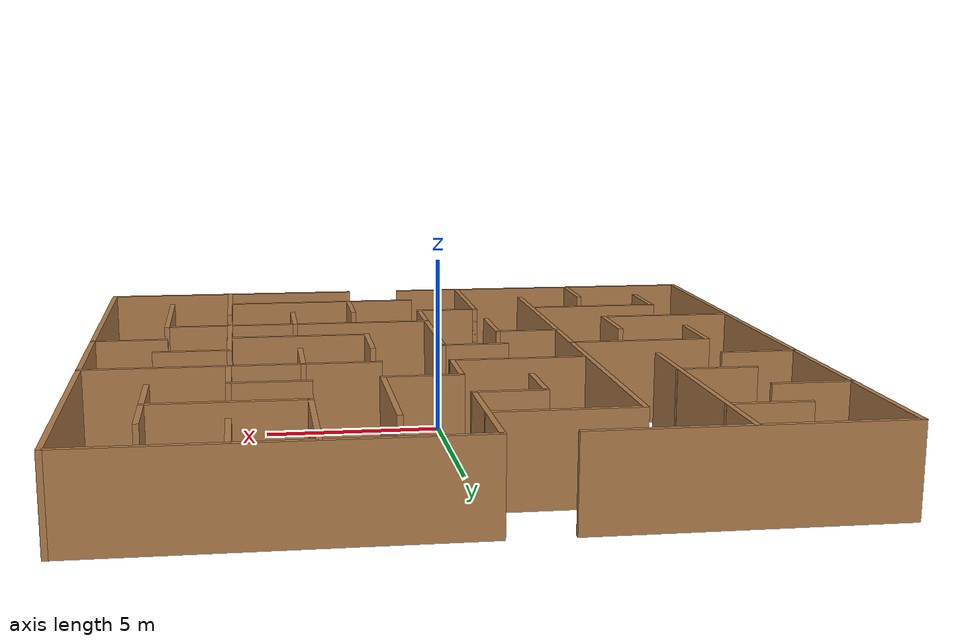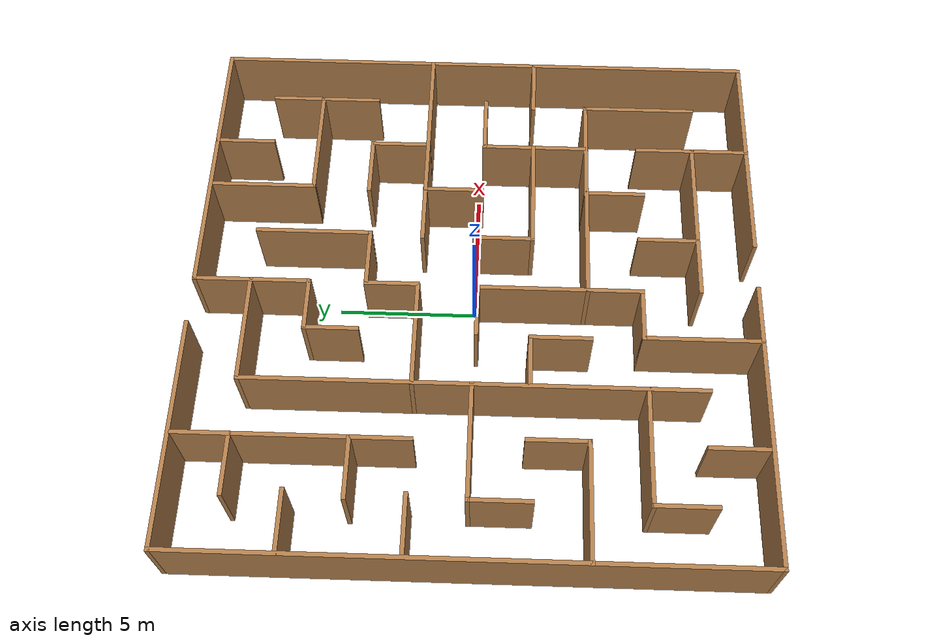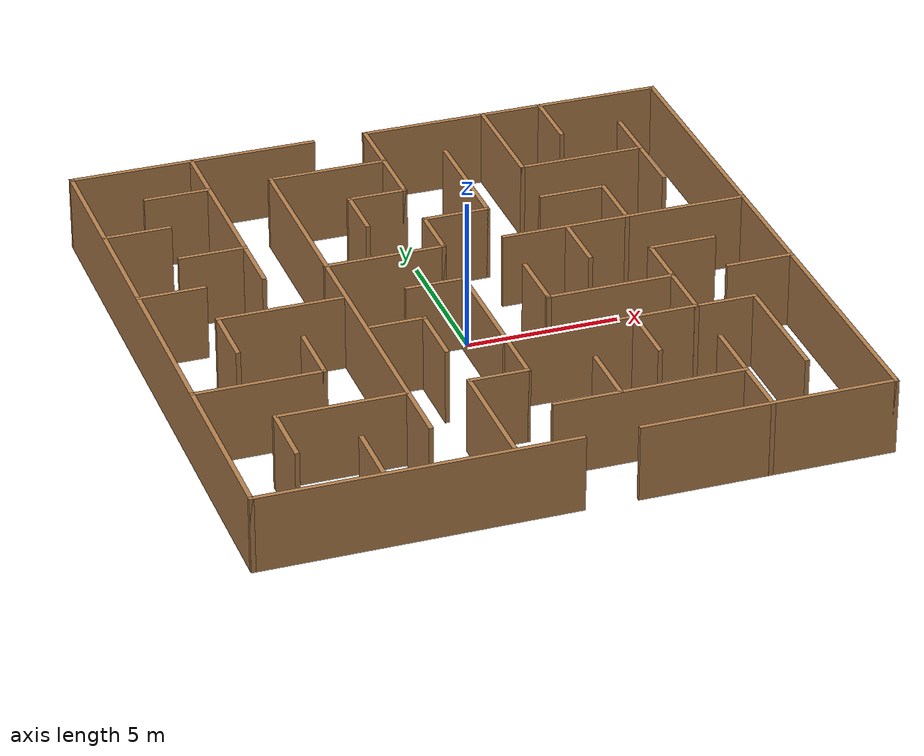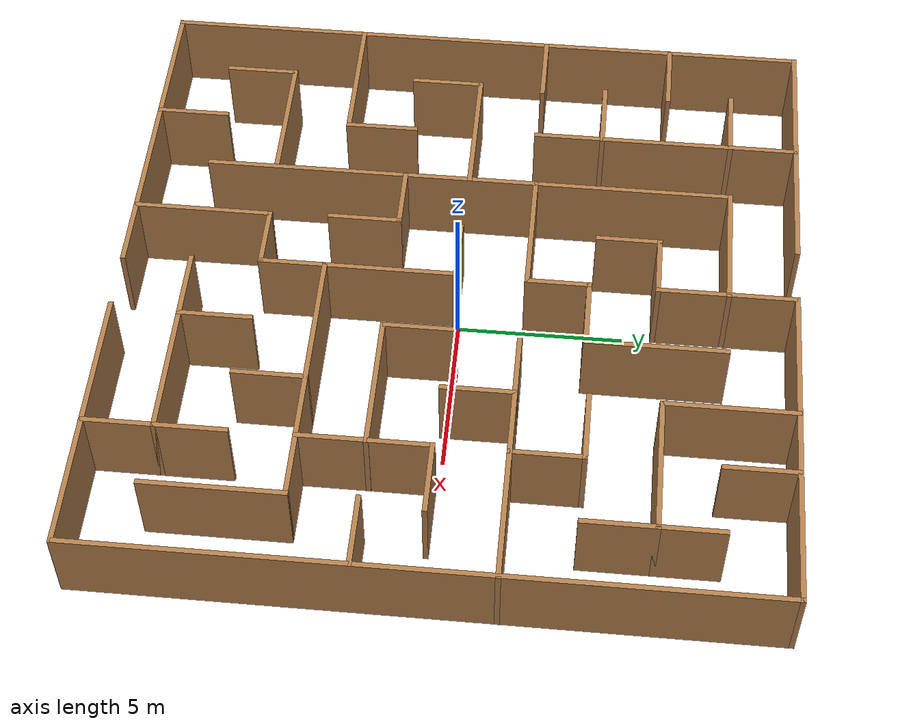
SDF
<?xml version='1.0'?>
<sdf version='1.6'>
  <model name='maze_textured'>
    <pose frame=''>-0.002525 -0.018579 0 0 -0 0</pose>
    <link name='Wall_13'>
      <collision name='Wall_13_Collision'>
        <geometry>
          <box>
            <size>8.25 0.15 2.5</size>
          </box>
        </geometry>
        <pose frame=''>0 0 1.25 0 -0 0</pose>
      </collision>
      <visual name='Wall_13_Visual'>
        <pose frame=''>0 0 1.25 0 -0 0</pose>
        <geometry>
          <box>
            <size>8.25 0.15 2.5</size>
          </box>
        </geometry>
        <material>
          <script>
            <uri>file://media/materials/scripts/gazebo.material</uri>
            <name>Gazebo/Wood</name>
          </script>
          <ambient>1 1 1 1</ambient>
        </material>
        <meta>
          <layer>0</layer>
        </meta>
      </visual>
      <pose frame=''>-5.96034 10.0594 0 0 -0 0</pose>
    </link>
    <link name='Wall_15'>
      <collision name='Wall_15_Collision'>
        <geometry>
          <box>
            <size>10.25 0.15 2.5</size>
          </box>
        </geometry>
        <pose frame=''>0 0 1.25 0 -0 0</pose>
      </collision>
      <visual name='Wall_15_Visual'>
        <pose frame=''>0 0 1.25 0 -0 0</pose>
        <geometry>
          <box>
            <size>10.25 0.15 2.5</size>
          </box>
        </geometry>
        <material>
          <script>
            <uri>file://media/materials/scripts/gazebo.material</uri>
            <name>Gazebo/Wood</name>
          </script>
          <ambient>1 1 1 1</ambient>
        </material>
        <meta>
          <layer>0</layer>
        </meta>
      </visual>
      <pose frame=''>4.95631 10.0433 0 0 -0 3.14159</pose>
    </link>
    <link name='Wall_16'>
      <collision name='Wall_16_Collision'>
        <geometry>
          <box>
            <size>4.25 0.15 2.5</size>
          </box>
        </geometry>
        <pose frame=''>0 0 1.25 0 -0 0</pose>
      </collision>
      <visual name='Wall_16_Visual'>
        <pose frame=''>0 0 1.25 0 -0 0</pose>
        <geometry>
          <box>
            <size>4.25 0.15 2.5</size>
          </box>
        </geometry>
        <material>
          <script>
            <uri>file://media/materials/scripts/gazebo.material</uri>
            <name>Gazebo/Wood</name>
          </script>
          <ambient>1 1 1 1</ambient>
        </material>
        <meta>
          <layer>0</layer>
        </meta>
      </visual>
      <pose frame=''>-0.093693 7.99331 0 0 -0 -1.5708</pose>
    </link>
    <link name='Wall_17'>
      <collision name='Wall_17_Collision'>
        <geometry>
          <box>
            <size>2 0.15 2.5</size>
          </box>
        </geometry>
        <pose frame=''>0 0 1.25 0 -0 0</pose>
      </collision>
      <visual name='Wall_17_Visual'>
        <pose frame=''>0 0 1.25 0 -0 0</pose>
        <geometry>
          <box>
            <size>2 0.15 2.5</size>
          </box>
        </geometry>
        <material>
          <script>
            <uri>file://media/materials/scripts/gazebo.material</uri>
            <name>Gazebo/Wood</name>
          </script>
          <ambient>1 1 1 1</ambient>
        </material>
        <meta>
          <layer>0</layer>
        </meta>
      </visual>
      <pose frame=''>-1.01869 5.94331 0 0 -0 3.14159</pose>
    </link>
    <link name='Wall_18'>
      <collision name='Wall_18_Collision'>
        <geometry>
          <box>
            <size>2 0.15 2.5</size>
          </box>
        </geometry>
        <pose frame=''>0 0 1.25 0 -0 0</pose>
      </collision>
      <visual name='Wall_18_Visual'>
        <pose frame=''>0 0 1.25 0 -0 0</pose>
        <geometry>
          <box>
            <size>2 0.15 2.5</size>
          </box>
        </geometry>
        <material>
          <script>
            <uri>file://media/materials/scripts/gazebo.material</uri>
            <name>Gazebo/Wood</name>
          </script>
          <ambient>1 1 1 1</ambient>
        </material>
        <meta>
          <layer>0</layer>
        </meta>
      </visual>
      <pose frame=''>-1.94369 5.01831 0 0 -0 -1.5708</pose>
    </link>
    <link name='Wall_2'>
      <collision name='Wall_2_Collision'>
        <geometry>
          <box>
            <size>20.25 0.15 2.5</size>
          </box>
        </geometry>
        <pose frame=''>0 0 1.25 0 -0 0</pose>
      </collision>
      <visual name='Wall_2_Visual'>
        <pose frame=''>0 0 1.25 0 -0 0</pose>
        <geometry>
          <box>
            <size>20.25 0.15 2.5</size>
          </box>
        </geometry>
        <material>
          <script>
            <uri>file://media/materials/scripts/gazebo.material</uri>
            <name>Gazebo/Wood</name>
          </script>
          <ambient>1 1 1 1</ambient>
        </material>
        <meta>
          <layer>0</layer>
        </meta>
      </visual>
      <pose frame=''>-10.0103 0.009398 0 0 -0 1.5708</pose>
    </link>
    <link name='Wall_20'>
      <collision name='Wall_20_Collision'>
        <geometry>
          <box>
            <size>8.25 0.15 2.5</size>
          </box>
        </geometry>
        <pose frame=''>0 0 1.25 0 -0 0</pose>
      </collision>
      <visual name='Wall_20_Visual'>
        <pose frame=''>0 0 1.25 0 -0 0</pose>
        <geometry>
          <box>
            <size>8.25 0.15 2.5</size>
          </box>
        </geometry>
        <material>
          <script>
            <uri>file://media/materials/scripts/gazebo.material</uri>
            <name>Gazebo/Wood</name>
          </script>
          <ambient>1 1 1 1</ambient>
        </material>
        <meta>
          <layer>0</layer>
        </meta>
      </visual>
      <pose frame=''>-6.00428 6.0061 0 0 -0 -1.5708</pose>
    </link>
    <link name='Wall_28'>
      <collision name='Wall_28_Collision'>
        <geometry>
          <box>
            <size>2.25 0.15 2.5</size>
          </box>
        </geometry>
        <pose frame=''>0 0 1.25 0 -0 0</pose>
      </collision>
      <visual name='Wall_28_Visual'>
        <pose frame=''>0 0 1.25 0 -0 0</pose>
        <geometry>
          <box>
            <size>2.25 0.15 2.5</size>
          </box>
        </geometry>
        <material>
          <script>
            <uri>file://media/materials/scripts/gazebo.material</uri>
            <name>Gazebo/Wood</name>
          </script>
          <ambient>1 1 1 1</ambient>
        </material>
        <meta>
          <layer>0</layer>
        </meta>
      </visual>
      <pose frame=''>-7.05114 8.02406 0 0 -0 3.14159</pose>
    </link>
    <link name='Wall_30'>
      <collision name='Wall_30_Collision'>
        <geometry>
          <box>
            <size>2.25 0.15 2.5</size>
          </box>
        </geometry>
        <pose frame=''>0 0 1.25 0 -0 0</pose>
      </collision>
      <visual name='Wall_30_Visual'>
        <pose frame=''>0 0 1.25 0 -0 0</pose>
        <geometry>
          <box>
            <size>2.25 0.15 2.5</size>
          </box>
        </geometry>
        <material>
          <script>
            <uri>file://media/materials/scripts/gazebo.material</uri>
            <name>Gazebo/Wood</name>
          </script>
          <ambient>1 1 1 1</ambient>
        </material>
        <meta>
          <layer>0</layer>
        </meta>
      </visual>
      <pose frame=''>-7.04908 4.01605 0 0 -0 3.14159</pose>
    </link>
    <link name='Wall_32'>
      <collision name='Wall_32_Collision'>
        <geometry>
          <box>
            <size>2.25 0.15 2.5</size>
          </box>
        </geometry>
        <pose frame=''>0 0 1.25 0 -0 0</pose>
      </collision>
      <visual name='Wall_32_Visual'>
        <pose frame=''>0 0 1.25 0 -0 0</pose>
        <geometry>
          <box>
            <size>2.25 0.15 2.5</size>
          </box>
        </geometry>
        <material>
          <script>
            <uri>file://media/materials/scripts/gazebo.material</uri>
            <name>Gazebo/Wood</name>
          </script>
          <ambient>1 1 1 1</ambient>
        </material>
        <meta>
          <layer>0</layer>
        </meta>
      </visual>
      <pose frame=''>-8.94831 6.02967 0 0 -0 0</pose>
    </link>
    <link name='Wall_34'>
      <collision name='Wall_34_Collision'>
        <geometry>
          <box>
            <size>2.25 0.15 2.5</size>
          </box>
        </geometry>
        <pose frame=''>0 0 1.25 0 -0 0</pose>
      </collision>
      <visual name='Wall_34_Visual'>
        <pose frame=''>0 0 1.25 0 -0 0</pose>
        <geometry>
          <box>
            <size>2.25 0.15 2.5</size>
          </box>
        </geometry>
        <material>
          <script>
            <uri>file://media/materials/scripts/gazebo.material</uri>
            <name>Gazebo/Wood</name>
          </script>
          <ambient>1 1 1 1</ambient>
        </material>
        <meta>
          <layer>0</layer>
        </meta>
      </visual>
      <pose frame=''>-8.95832 2.00967 0 0 -0 0</pose>
    </link>
    <link name='Wall_36'>
      <collision name='Wall_36_Collision'>
        <geometry>
          <box>
            <size>4.25 0.15 2.5</size>
          </box>
        </geometry>
        <pose frame=''>0 0 1.25 0 -0 0</pose>
      </collision>
      <visual name='Wall_36_Visual'>
        <pose frame=''>0 0 1.25 0 -0 0</pose>
        <geometry>
          <box>
            <size>4.25 0.15 2.5</size>
          </box>
        </geometry>
        <material>
          <script>
            <uri>file://media/materials/scripts/gazebo.material</uri>
            <name>Gazebo/Wood</name>
          </script>
          <ambient>1 1 1 1</ambient>
        </material>
        <meta>
          <layer>0</layer>
        </meta>
      </visual>
      <pose frame=''>-7.95818 -3.9923 0 0 -0 0</pose>
    </link>
    <link name='Wall_37'>
      <collision name='Wall_37_Collision'>
        <geometry>
          <box>
            <size>2.25 0.15 2.5</size>
          </box>
        </geometry>
        <pose frame=''>0 0 1.25 0 -0 0</pose>
      </collision>
      <visual name='Wall_37_Visual'>
        <pose frame=''>0 0 1.25 0 -0 0</pose>
        <geometry>
          <box>
            <size>2.25 0.15 2.5</size>
          </box>
        </geometry>
        <material>
          <script>
            <uri>file://media/materials/scripts/gazebo.material</uri>
            <name>Gazebo/Wood</name>
          </script>
          <ambient>1 1 1 1</ambient>
        </material>
        <meta>
          <layer>0</layer>
        </meta>
      </visual>
      <pose frame=''>-5.90818 -2.9423 0 0 -0 1.5708</pose>
    </link>
    <link name='Wall_4'>
      <collision name='Wall_4_Collision'>
        <geometry>
          <box>
            <size>10.25 0.15 2.5</size>
          </box>
        </geometry>
        <pose frame=''>0 0 1.25 0 -0 0</pose>
      </collision>
      <visual name='Wall_4_Visual'>
        <pose frame=''>0 0 1.25 0 -0 0</pose>
        <geometry>
          <box>
            <size>10.25 0.15 2.5</size>
          </box>
        </geometry>
        <material>
          <script>
            <uri>file://media/materials/scripts/gazebo.material</uri>
            <name>Gazebo/Wood</name>
          </script>
          <ambient>1 1 1 1</ambient>
        </material>
        <meta>
          <layer>0</layer>
        </meta>
      </visual>
      <pose frame=''>-4.96034 -10.0406 0 0 -0 0</pose>
    </link>
    <link name='Wall_41'>
      <collision name='Wall_41_Collision'>
        <geometry>
          <box>
            <size>4 0.15 2.5</size>
          </box>
        </geometry>
        <pose frame=''>0 0 1.25 0 -0 0</pose>
      </collision>
      <visual name='Wall_41_Visual'>
        <pose frame=''>0 0 1.25 0 -0 0</pose>
        <geometry>
          <box>
            <size>4 0.15 2.5</size>
          </box>
        </geometry>
        <material>
          <script>
            <uri>file://media/materials/scripts/gazebo.material</uri>
            <name>Gazebo/Wood</name>
          </script>
          <ambient>1 1 1 1</ambient>
        </material>
        <meta>
          <layer>0</layer>
        </meta>
      </visual>
      <pose frame=''>-2.01841 8.03251 0 0 -0 3.14159</pose>
    </link>
    <link name='Wall_42'>
      <collision name='Wall_42_Collision'>
        <geometry>
          <box>
            <size>16.25 0.15 2.5</size>
          </box>
        </geometry>
        <pose frame=''>0 0 1.25 0 -0 0</pose>
      </collision>
      <visual name='Wall_42_Visual'>
        <pose frame=''>0 0 1.25 0 -0 0</pose>
        <geometry>
          <box>
            <size>16.25 0.15 2.5</size>
          </box>
        </geometry>
        <material>
          <script>
            <uri>file://media/materials/scripts/gazebo.material</uri>
            <name>Gazebo/Wood</name>
          </script>
          <ambient>1 1 1 1</ambient>
        </material>
        <meta>
          <layer>0</layer>
        </meta>
      </visual>
      <pose frame=''>-3.94341 -0.017489 0 0 -0 -1.5708</pose>
    </link>
    <link name='Wall_44'>
      <collision name='Wall_44_Collision'>
        <geometry>
          <box>
            <size>4.25 0.15 2.5</size>
          </box>
        </geometry>
        <pose frame=''>0 0 1.25 0 -0 0</pose>
      </collision>
      <visual name='Wall_44_Visual'>
        <pose frame=''>0 0 1.25 0 -0 0</pose>
        <geometry>
          <box>
            <size>4.25 0.15 2.5</size>
          </box>
        </geometry>
        <material>
          <script>
            <uri>file://media/materials/scripts/gazebo.material</uri>
            <name>Gazebo/Wood</name>
          </script>
          <ambient>1 1 1 1</ambient>
        </material>
        <meta>
          <layer>0</layer>
        </meta>
      </visual>
      <pose frame=''>-6.00535 -6.0065 0 0 -0 3.14159</pose>
    </link>
    <link name='Wall_45'>
      <collision name='Wall_45_Collision'>
        <geometry>
          <box>
            <size>2.25 0.15 2.5</size>
          </box>
        </geometry>
        <pose frame=''>0 0 1.25 0 -0 0</pose>
      </collision>
      <visual name='Wall_45_Visual'>
        <pose frame=''>0 0 1.25 0 -0 0</pose>
        <geometry>
          <box>
            <size>2.25 0.15 2.5</size>
          </box>
        </geometry>
        <material>
          <script>
            <uri>file://media/materials/scripts/gazebo.material</uri>
            <name>Gazebo/Wood</name>
          </script>
          <ambient>1 1 1 1</ambient>
        </material>
        <meta>
          <layer>0</layer>
        </meta>
      </visual>
      <pose frame=''>-8.05535 -7.0565 0 0 -0 -1.5708</pose>
    </link>
    <link name='Wall_47'>
      <collision name='Wall_47_Collision'>
        <geometry>
          <box>
            <size>2.25 0.15 2.5</size>
          </box>
        </geometry>
        <pose frame=''>0 0 1.25 0 -0 0</pose>
      </collision>
      <visual name='Wall_47_Visual'>
        <pose frame=''>0 0 1.25 0 -0 0</pose>
        <geometry>
          <box>
            <size>2.25 0.15 2.5</size>
          </box>
        </geometry>
        <material>
          <script>
            <uri>file://media/materials/scripts/gazebo.material</uri>
            <name>Gazebo/Wood</name>
          </script>
          <ambient>1 1 1 1</ambient>
        </material>
        <meta>
          <layer>0</layer>
        </meta>
      </visual>
      <pose frame=''>-6.00693 -8.97921 0 0 -0 1.5708</pose>
    </link>
    <link name='Wall_49'>
      <collision name='Wall_49_Collision'>
        <geometry>
          <box>
            <size>4.25 0.15 2.5</size>
          </box>
        </geometry>
        <pose frame=''>0 0 1.25 0 -0 0</pose>
      </collision>
      <visual name='Wall_49_Visual'>
        <pose frame=''>0 0 1.25 0 -0 0</pose>
        <geometry>
          <box>
            <size>4.25 0.15 2.5</size>
          </box>
        </geometry>
        <material>
          <script>
            <uri>file://media/materials/scripts/gazebo.material</uri>
            <name>Gazebo/Wood</name>
          </script>
          <ambient>1 1 1 1</ambient>
        </material>
        <meta>
          <layer>0</layer>
        </meta>
      </visual>
      <pose frame=''>-5.99808 0.011814 0 0 -0 3.14159</pose>
    </link>
    <link name='Wall_50'>
      <collision name='Wall_50_Collision'>
        <geometry>
          <box>
            <size>2.25 0.15 2.5</size>
          </box>
        </geometry>
        <pose frame=''>0 0 1.25 0 -0 0</pose>
      </collision>
      <visual name='Wall_50_Visual'>
        <pose frame=''>0 0 1.25 0 -0 0</pose>
        <geometry>
          <box>
            <size>2.25 0.15 2.5</size>
          </box>
        </geometry>
        <material>
          <script>
            <uri>file://media/materials/scripts/gazebo.material</uri>
            <name>Gazebo/Wood</name>
          </script>
          <ambient>1 1 1 1</ambient>
        </material>
        <meta>
          <layer>0</layer>
        </meta>
      </visual>
      <pose frame=''>-8.04808 -1.03819 0 0 -0 -1.5708</pose>
    </link>
    <link name='Wall_52'>
      <collision name='Wall_52_Collision'>
        <geometry>
          <box>
            <size>4 0.15 2.5</size>
          </box>
        </geometry>
        <pose frame=''>0 0 1.25 0 -0 0</pose>
      </collision>
      <visual name='Wall_52_Visual'>
        <pose frame=''>0 0 1.25 0 -0 0</pose>
        <geometry>
          <box>
            <size>4 0.15 2.5</size>
          </box>
        </geometry>
        <material>
          <script>
            <uri>file://media/materials/scripts/gazebo.material</uri>
            <name>Gazebo/Wood</name>
          </script>
          <ambient>1 1 1 1</ambient>
        </material>
        <meta>
          <layer>0</layer>
        </meta>
      </visual>
      <pose frame=''>-2.02014 2.06008 0 0 -0 0</pose>
    </link>
    <link name='Wall_53'>
      <collision name='Wall_53_Collision'>
        <geometry>
          <box>
            <size>2 0.15 2.5</size>
          </box>
        </geometry>
        <pose frame=''>0 0 1.25 0 -0 0</pose>
      </collision>
      <visual name='Wall_53_Visual'>
        <pose frame=''>0 0 1.25 0 -0 0</pose>
        <geometry>
          <box>
            <size>2 0.15 2.5</size>
          </box>
        </geometry>
        <material>
          <script>
            <uri>file://media/materials/scripts/gazebo.material</uri>
            <name>Gazebo/Wood</name>
          </script>
          <ambient>1 1 1 1</ambient>
        </material>
        <meta>
          <layer>0</layer>
        </meta>
      </visual>
      <pose frame=''>-0.095143 2.98508 0 0 -0 1.5708</pose>
    </link>
    <link name='Wall_54'>
      <collision name='Wall_54_Collision'>
        <geometry>
          <box>
            <size>2.25 0.15 2.5</size>
          </box>
        </geometry>
        <pose frame=''>0 0 1.25 0 -0 0</pose>
      </collision>
      <visual name='Wall_54_Visual'>
        <pose frame=''>0 0 1.25 0 -0 0</pose>
        <geometry>
          <box>
            <size>2.25 0.15 2.5</size>
          </box>
        </geometry>
        <material>
          <script>
            <uri>file://media/materials/scripts/gazebo.material</uri>
            <name>Gazebo/Wood</name>
          </script>
          <ambient>1 1 1 1</ambient>
        </material>
        <meta>
          <layer>0</layer>
        </meta>
      </visual>
      <pose frame=''>0.954857 3.91008 0 0 -0 0</pose>
    </link>
    <link name='Wall_55'>
      <collision name='Wall_55_Collision'>
        <geometry>
          <box>
            <size>4.25 0.15 2.5</size>
          </box>
        </geometry>
        <pose frame=''>0 0 1.25 0 -0 0</pose>
      </collision>
      <visual name='Wall_55_Visual'>
        <pose frame=''>0 0 1.25 0 -0 0</pose>
        <geometry>
          <box>
            <size>4.25 0.15 2.5</size>
          </box>
        </geometry>
        <material>
          <script>
            <uri>file://media/materials/scripts/gazebo.material</uri>
            <name>Gazebo/Wood</name>
          </script>
          <ambient>1 1 1 1</ambient>
        </material>
        <meta>
          <layer>0</layer>
        </meta>
      </visual>
      <pose frame=''>2.00486 5.96008 0 0 -0 1.5708</pose>
    </link>
    <link name='Wall_57'>
      <collision name='Wall_57_Collision'>
        <geometry>
          <box>
            <size>4 0.15 2.5</size>
          </box>
        </geometry>
        <pose frame=''>0 0 1.25 0 -0 0</pose>
      </collision>
      <visual name='Wall_57_Visual'>
        <pose frame=''>0 0 1.25 0 -0 0</pose>
        <geometry>
          <box>
            <size>4 0.15 2.5</size>
          </box>
        </geometry>
        <material>
          <script>
            <uri>file://media/materials/scripts/gazebo.material</uri>
            <name>Gazebo/Wood</name>
          </script>
          <ambient>1 1 1 1</ambient>
        </material>
        <meta>
          <layer>0</layer>
        </meta>
      </visual>
      <pose frame=''>3.99887 8.10976 0 0 -0 -1.5708</pose>
    </link>
    <link name='Wall_58'>
      <collision name='Wall_58_Collision'>
        <geometry>
          <box>
            <size>4.25 0.15 2.5</size>
          </box>
        </geometry>
        <pose frame=''>0 0 1.25 0 -0 0</pose>
      </collision>
      <visual name='Wall_58_Visual'>
        <pose frame=''>0 0 1.25 0 -0 0</pose>
        <geometry>
          <box>
            <size>4.25 0.15 2.5</size>
          </box>
        </geometry>
        <material>
          <script>
            <uri>file://media/materials/scripts/gazebo.material</uri>
            <name>Gazebo/Wood</name>
          </script>
          <ambient>1 1 1 1</ambient>
        </material>
        <meta>
          <layer>0</layer>
        </meta>
      </visual>
      <pose frame=''>6.04887 6.18476 0 0 -0 0</pose>
    </link>
    <link name='Wall_59'>
      <collision name='Wall_59_Collision'>
        <geometry>
          <box>
            <size>2 0.15 2.5</size>
          </box>
        </geometry>
        <pose frame=''>0 0 1.25 0 -0 0</pose>
      </collision>
      <visual name='Wall_59_Visual'>
        <pose frame=''>0 0 1.25 0 -0 0</pose>
        <geometry>
          <box>
            <size>2 0.15 2.5</size>
          </box>
        </geometry>
        <material>
          <script>
            <uri>file://media/materials/scripts/gazebo.material</uri>
            <name>Gazebo/Wood</name>
          </script>
          <ambient>1 1 1 1</ambient>
        </material>
        <meta>
          <layer>0</layer>
        </meta>
      </visual>
      <pose frame=''>8.09887 7.10976 0 0 -0 1.5708</pose>
    </link>
    <link name='Wall_6'>
      <collision name='Wall_6_Collision'>
        <geometry>
          <box>
            <size>8.25 0.15 2.5</size>
          </box>
        </geometry>
        <pose frame=''>0 0 1.25 0 -0 0</pose>
      </collision>
      <visual name='Wall_6_Visual'>
        <pose frame=''>0 0 1.25 0 -0 0</pose>
        <geometry>
          <box>
            <size>8.25 0.15 2.5</size>
          </box>
        </geometry>
        <material>
          <script>
            <uri>file://media/materials/scripts/gazebo.material</uri>
            <name>Gazebo/Wood</name>
          </script>
          <ambient>1 1 1 1</ambient>
        </material>
        <meta>
          <layer>0</layer>
        </meta>
      </visual>
      <pose frame=''>5.95631 -10.0567 0 0 -0 0</pose>
    </link>
    <link name='Wall_61'>
      <collision name='Wall_61_Collision'>
        <geometry>
          <box>
            <size>2.25 0.15 2.5</size>
          </box>
        </geometry>
        <pose frame=''>0 0 1.25 0 -0 0</pose>
      </collision>
      <visual name='Wall_61_Visual'>
        <pose frame=''>0 0 1.25 0 -0 0</pose>
        <geometry>
          <box>
            <size>2.25 0.15 2.5</size>
          </box>
        </geometry>
        <material>
          <script>
            <uri>file://media/materials/scripts/gazebo.material</uri>
            <name>Gazebo/Wood</name>
          </script>
          <ambient>1 1 1 1</ambient>
        </material>
        <meta>
          <layer>0</layer>
        </meta>
      </visual>
      <pose frame=''>8.09887 5.13476 0 0 -0 -1.5708</pose>
    </link>
    <link name='Wall_63'>
      <collision name='Wall_63_Collision'>
        <geometry>
          <box>
            <size>2.25 0.15 2.5</size>
          </box>
        </geometry>
        <pose frame=''>0 0 1.25 0 -0 0</pose>
      </collision>
      <visual name='Wall_63_Visual'>
        <pose frame=''>0 0 1.25 0 -0 0</pose>
        <geometry>
          <box>
            <size>2.25 0.15 2.5</size>
          </box>
        </geometry>
        <material>
          <script>
            <uri>file://media/materials/scripts/gazebo.material</uri>
            <name>Gazebo/Wood</name>
          </script>
          <ambient>1 1 1 1</ambient>
        </material>
        <meta>
          <layer>0</layer>
        </meta>
      </visual>
      <pose frame=''>5.99531 8.98595 0 0 -0 -1.5708</pose>
    </link>
    <link name='Wall_65'>
      <collision name='Wall_65_Collision'>
        <geometry>
          <box>
            <size>8.25 0.15 2.5</size>
          </box>
        </geometry>
        <pose frame=''>0 0 1.25 0 -0 0</pose>
      </collision>
      <visual name='Wall_65_Visual'>
        <pose frame=''>0 0 1.25 0 -0 0</pose>
        <geometry>
          <box>
            <size>8.25 0.15 2.5</size>
          </box>
        </geometry>
        <material>
          <script>
            <uri>file://media/materials/scripts/gazebo.material</uri>
            <name>Gazebo/Wood</name>
          </script>
          <ambient>1 1 1 1</ambient>
        </material>
        <meta>
          <layer>0</layer>
        </meta>
      </visual>
      <pose frame=''>5.96034 2.00233 0 0 -0 3.14159</pose>
    </link>
    <link name='Wall_67'>
      <collision name='Wall_67_Collision'>
        <geometry>
          <box>
            <size>2.25 0.15 2.5</size>
          </box>
        </geometry>
        <pose frame=''>0 0 1.25 0 -0 0</pose>
      </collision>
      <visual name='Wall_67_Visual'>
        <pose frame=''>0 0 1.25 0 -0 0</pose>
        <geometry>
          <box>
            <size>2.25 0.15 2.5</size>
          </box>
        </geometry>
        <material>
          <script>
            <uri>file://media/materials/scripts/gazebo.material</uri>
            <name>Gazebo/Wood</name>
          </script>
          <ambient>1 1 1 1</ambient>
        </material>
        <meta>
          <layer>0</layer>
        </meta>
      </visual>
      <pose frame=''>4.00404 0.961953 0 0 -0 -1.5708</pose>
    </link>
    <link name='Wall_69'>
      <collision name='Wall_69_Collision'>
        <geometry>
          <box>
            <size>2.25 0.15 2.5</size>
          </box>
        </geometry>
        <pose frame=''>0 0 1.25 0 -0 0</pose>
      </collision>
      <visual name='Wall_69_Visual'>
        <pose frame=''>0 0 1.25 0 -0 0</pose>
        <geometry>
          <box>
            <size>2.25 0.15 2.5</size>
          </box>
        </geometry>
        <material>
          <script>
            <uri>file://media/materials/scripts/gazebo.material</uri>
            <name>Gazebo/Wood</name>
          </script>
          <ambient>1 1 1 1</ambient>
        </material>
        <meta>
          <layer>0</layer>
        </meta>
      </visual>
      <pose frame=''>6.02404 3.05195 0 0 -0 1.5708</pose>
    </link>
    <link name='Wall_7'>
      <collision name='Wall_7_Collision'>
        <geometry>
          <box>
            <size>20.25 0.15 2.5</size>
          </box>
        </geometry>
        <pose frame=''>0 0 1.25 0 -0 0</pose>
      </collision>
      <visual name='Wall_7_Visual'>
        <pose frame=''>0 0 1.25 0 -0 0</pose>
        <geometry>
          <box>
            <size>20.25 0.15 2.5</size>
          </box>
        </geometry>
        <material>
          <script>
            <uri>file://media/materials/scripts/gazebo.material</uri>
            <name>Gazebo/Wood</name>
          </script>
          <ambient>1 1 1 1</ambient>
        </material>
        <meta>
          <layer>0</layer>
        </meta>
      </visual>
      <pose frame=''>10.0063 -0.006688 0 0 -0 1.5708</pose>
    </link>
    <link name='Wall_70'>
      <collision name='Wall_70_Collision'>
        <geometry>
          <box>
            <size>2.25 0.15 2.5</size>
          </box>
        </geometry>
        <pose frame=''>0 0 1.25 0 -0 0</pose>
      </collision>
      <visual name='Wall_70_Visual'>
        <pose frame=''>0 0 1.25 0 -0 0</pose>
        <geometry>
          <box>
            <size>2.25 0.15 2.5</size>
          </box>
        </geometry>
        <material>
          <script>
            <uri>file://media/materials/scripts/gazebo.material</uri>
            <name>Gazebo/Wood</name>
          </script>
          <ambient>1 1 1 1</ambient>
        </material>
        <meta>
          <layer>0</layer>
        </meta>
      </visual>
      <pose frame=''>4.97404 4.10195 0 0 -0 3.14159</pose>
    </link>
    <link name='Wall_72'>
      <collision name='Wall_72_Collision'>
        <geometry>
          <box>
            <size>4.25 0.15 2.5</size>
          </box>
        </geometry>
        <pose frame=''>0 0 1.25 0 -0 0</pose>
      </collision>
      <visual name='Wall_72_Visual'>
        <pose frame=''>0 0 1.25 0 -0 0</pose>
        <geometry>
          <box>
            <size>4.25 0.15 2.5</size>
          </box>
        </geometry>
        <material>
          <script>
            <uri>file://media/materials/scripts/gazebo.material</uri>
            <name>Gazebo/Wood</name>
          </script>
          <ambient>1 1 1 1</ambient>
        </material>
        <meta>
          <layer>0</layer>
        </meta>
      </visual>
      <pose frame=''>-2.00026 -7.97485 0 0 -0 1.5708</pose>
    </link>
    <link name='Wall_73'>
      <collision name='Wall_73_Collision'>
        <geometry>
          <box>
            <size>2 0.15 2.5</size>
          </box>
        </geometry>
        <pose frame=''>0 0 1.25 0 -0 0</pose>
      </collision>
      <visual name='Wall_73_Visual'>
        <pose frame=''>0 0 1.25 0 -0 0</pose>
        <geometry>
          <box>
            <size>2 0.15 2.5</size>
          </box>
        </geometry>
        <material>
          <script>
            <uri>file://media/materials/scripts/gazebo.material</uri>
            <name>Gazebo/Wood</name>
          </script>
          <ambient>1 1 1 1</ambient>
        </material>
        <meta>
          <layer>0</layer>
        </meta>
      </visual>
      <pose frame=''>-1.07526 -5.92485 0 0 -0 0</pose>
    </link>
    <link name='Wall_74'>
      <collision name='Wall_74_Collision'>
        <geometry>
          <box>
            <size>6 0.15 2.5</size>
          </box>
        </geometry>
        <pose frame=''>0 0 1.25 0 -0 0</pose>
      </collision>
      <visual name='Wall_74_Visual'>
        <pose frame=''>0 0 1.25 0 -0 0</pose>
        <geometry>
          <box>
            <size>6 0.15 2.5</size>
          </box>
        </geometry>
        <material>
          <script>
            <uri>file://media/materials/scripts/gazebo.material</uri>
            <name>Gazebo/Wood</name>
          </script>
          <ambient>1 1 1 1</ambient>
        </material>
        <meta>
          <layer>0</layer>
        </meta>
      </visual>
      <pose frame=''>-0.150256 -2.99985 0 0 -0 1.5708</pose>
    </link>
    <link name='Wall_75'>
      <collision name='Wall_75_Collision'>
        <geometry>
          <box>
            <size>2 0.15 2.5</size>
          </box>
        </geometry>
        <pose frame=''>0 0 1.25 0 -0 0</pose>
      </collision>
      <visual name='Wall_75_Visual'>
        <pose frame=''>0 0 1.25 0 -0 0</pose>
        <geometry>
          <box>
            <size>2 0.15 2.5</size>
          </box>
        </geometry>
        <material>
          <script>
            <uri>file://media/materials/scripts/gazebo.material</uri>
            <name>Gazebo/Wood</name>
          </script>
          <ambient>1 1 1 1</ambient>
        </material>
        <meta>
          <layer>0</layer>
        </meta>
      </visual>
      <pose frame=''>-1.07526 -0.07485 0 0 -0 3.14159</pose>
    </link>
    <link name='Wall_77'>
      <collision name='Wall_77_Collision'>
        <geometry>
          <box>
            <size>2 0.15 2.5</size>
          </box>
        </geometry>
        <pose frame=''>0 0 1.25 0 -0 0</pose>
      </collision>
      <visual name='Wall_77_Visual'>
        <pose frame=''>0 0 1.25 0 -0 0</pose>
        <geometry>
          <box>
            <size>2 0.15 2.5</size>
          </box>
        </geometry>
        <material>
          <script>
            <uri>file://media/materials/scripts/gazebo.material</uri>
            <name>Gazebo/Wood</name>
          </script>
          <ambient>1 1 1 1</ambient>
        </material>
        <meta>
          <layer>0</layer>
        </meta>
      </visual>
      <pose frame=''>-3.00943 -1.97443 0 0 -0 0</pose>
    </link>
    <link name='Wall_78'>
      <collision name='Wall_78_Collision'>
        <geometry>
          <box>
            <size>2.25 0.15 2.5</size>
          </box>
        </geometry>
        <pose frame=''>0 0 1.25 0 -0 0</pose>
      </collision>
      <visual name='Wall_78_Visual'>
        <pose frame=''>0 0 1.25 0 -0 0</pose>
        <geometry>
          <box>
            <size>2.25 0.15 2.5</size>
          </box>
        </geometry>
        <material>
          <script>
            <uri>file://media/materials/scripts/gazebo.material</uri>
            <name>Gazebo/Wood</name>
          </script>
          <ambient>1 1 1 1</ambient>
        </material>
        <meta>
          <layer>0</layer>
        </meta>
      </visual>
      <pose frame=''>-2.08443 -3.02443 0 0 -0 -1.5708</pose>
    </link>
    <link name='Wall_80'>
      <collision name='Wall_80_Collision'>
        <geometry>
          <box>
            <size>4.25 0.15 2.5</size>
          </box>
        </geometry>
        <pose frame=''>0 0 1.25 0 -0 0</pose>
      </collision>
      <visual name='Wall_80_Visual'>
        <pose frame=''>0 0 1.25 0 -0 0</pose>
        <geometry>
          <box>
            <size>4.25 0.15 2.5</size>
          </box>
        </geometry>
        <material>
          <script>
            <uri>file://media/materials/scripts/gazebo.material</uri>
            <name>Gazebo/Wood</name>
          </script>
          <ambient>1 1 1 1</ambient>
        </material>
        <meta>
          <layer>0</layer>
        </meta>
      </visual>
      <pose frame=''>6.03353 -8.0094 0 0 -0 1.5708</pose>
    </link>
    <link name='Wall_82'>
      <collision name='Wall_82_Collision'>
        <geometry>
          <box>
            <size>6.25 0.15 2.5</size>
          </box>
        </geometry>
        <pose frame=''>0 0 1.25 0 -0 0</pose>
      </collision>
      <visual name='Wall_82_Visual'>
        <pose frame=''>0 0 1.25 0 -0 0</pose>
        <geometry>
          <box>
            <size>6.25 0.15 2.5</size>
          </box>
        </geometry>
        <material>
          <script>
            <uri>file://media/materials/scripts/gazebo.material</uri>
            <name>Gazebo/Wood</name>
          </script>
          <ambient>1 1 1 1</ambient>
        </material>
        <meta>
          <layer>0</layer>
        </meta>
      </visual>
      <pose frame=''>2.98353 -8.00622 0 0 -0 3.14159</pose>
    </link>
    <link name='Wall_84'>
      <collision name='Wall_84_Collision'>
        <geometry>
          <box>
            <size>2.25 0.15 2.5</size>
          </box>
        </geometry>
        <pose frame=''>0 0 1.25 0 -0 0</pose>
      </collision>
      <visual name='Wall_84_Visual'>
        <pose frame=''>0 0 1.25 0 -0 0</pose>
        <geometry>
          <box>
            <size>2.25 0.15 2.5</size>
          </box>
        </geometry>
        <material>
          <script>
            <uri>file://media/materials/scripts/gazebo.material</uri>
            <name>Gazebo/Wood</name>
          </script>
          <ambient>1 1 1 1</ambient>
        </material>
        <meta>
          <layer>0</layer>
        </meta>
      </visual>
      <pose frame=''>2.02171 -6.94558 0 0 -0 1.5708</pose>
    </link>
    <link name='Wall_86'>
      <collision name='Wall_86_Collision'>
        <geometry>
          <box>
            <size>8.25 0.15 2.5</size>
          </box>
        </geometry>
        <pose frame=''>0 0 1.25 0 -0 0</pose>
      </collision>
      <visual name='Wall_86_Visual'>
        <pose frame=''>0 0 1.25 0 -0 0</pose>
        <geometry>
          <box>
            <size>8.25 0.15 2.5</size>
          </box>
        </geometry>
        <material>
          <script>
            <uri>file://media/materials/scripts/gazebo.material</uri>
            <name>Gazebo/Wood</name>
          </script>
          <ambient>1 1 1 1</ambient>
        </material>
        <meta>
          <layer>0</layer>
        </meta>
      </visual>
      <pose frame=''>3.89908 -3.99123 0 0 -0 0</pose>
    </link>
    <link name='Wall_87'>
      <collision name='Wall_87_Collision'>
        <geometry>
          <box>
            <size>4.25 0.15 2.5</size>
          </box>
        </geometry>
        <pose frame=''>0 0 1.25 0 -0 0</pose>
      </collision>
      <visual name='Wall_87_Visual'>
        <pose frame=''>0 0 1.25 0 -0 0</pose>
        <geometry>
          <box>
            <size>4.25 0.15 2.5</size>
          </box>
        </geometry>
        <material>
          <script>
            <uri>file://media/materials/scripts/gazebo.material</uri>
            <name>Gazebo/Wood</name>
          </script>
          <ambient>1 1 1 1</ambient>
        </material>
        <meta>
          <layer>0</layer>
        </meta>
      </visual>
      <pose frame=''>7.94908 -6.04123 0 0 -0 -1.5708</pose>
    </link>
    <link name='Wall_89'>
      <collision name='Wall_89_Collision'>
        <geometry>
          <box>
            <size>2.25 0.15 2.5</size>
          </box>
        </geometry>
        <pose frame=''>0 0 1.25 0 -0 0</pose>
      </collision>
      <visual name='Wall_89_Visual'>
        <pose frame=''>0 0 1.25 0 -0 0</pose>
        <geometry>
          <box>
            <size>2.25 0.15 2.5</size>
          </box>
        </geometry>
        <material>
          <script>
            <uri>file://media/materials/scripts/gazebo.material</uri>
            <name>Gazebo/Wood</name>
          </script>
          <ambient>1 1 1 1</ambient>
        </material>
        <meta>
          <layer>0</layer>
        </meta>
      </visual>
      <pose frame=''>3.99715 -5.04069 0 0 -0 -1.5708</pose>
    </link>
    <link name='Wall_91'>
      <collision name='Wall_91_Collision'>
        <geometry>
          <box>
            <size>2.25 0.15 2.5</size>
          </box>
        </geometry>
        <pose frame=''>0 0 1.25 0 -0 0</pose>
      </collision>
      <visual name='Wall_91_Visual'>
        <pose frame=''>0 0 1.25 0 -0 0</pose>
        <geometry>
          <box>
            <size>2.25 0.15 2.5</size>
          </box>
        </geometry>
        <material>
          <script>
            <uri>file://media/materials/scripts/gazebo.material</uri>
            <name>Gazebo/Wood</name>
          </script>
          <ambient>1 1 1 1</ambient>
        </material>
        <meta>
          <layer>0</layer>
        </meta>
      </visual>
      <pose frame=''>8.95532 -1.98801 0 0 -0 3.14159</pose>
    </link>
    <link name='Wall_93'>
      <collision name='Wall_93_Collision'>
        <geometry>
          <box>
            <size>4 0.15 2.5</size>
          </box>
        </geometry>
        <pose frame=''>0 0 1.25 0 -0 0</pose>
      </collision>
      <visual name='Wall_93_Visual'>
        <pose frame=''>0 0 1.25 0 -0 0</pose>
        <geometry>
          <box>
            <size>4 0.15 2.5</size>
          </box>
        </geometry>
        <material>
          <script>
            <uri>file://media/materials/scripts/gazebo.material</uri>
            <name>Gazebo/Wood</name>
          </script>
          <ambient>1 1 1 1</ambient>
        </material>
        <meta>
          <layer>0</layer>
        </meta>
      </visual>
      <pose frame=''>6.01495 -2.07128 0 0 -0 1.5708</pose>
    </link>
    <link name='Wall_94'>
      <collision name='Wall_94_Collision'>
        <geometry>
          <box>
            <size>2.25 0.15 2.5</size>
          </box>
        </geometry>
        <pose frame=''>0 0 1.25 0 -0 0</pose>
      </collision>
      <visual name='Wall_94_Visual'>
        <pose frame=''>0 0 1.25 0 -0 0</pose>
        <geometry>
          <box>
            <size>2.25 0.15 2.5</size>
          </box>
        </geometry>
        <material>
          <script>
            <uri>file://media/materials/scripts/gazebo.material</uri>
            <name>Gazebo/Wood</name>
          </script>
          <ambient>1 1 1 1</ambient>
        </material>
        <meta>
          <layer>0</layer>
        </meta>
      </visual>
      <pose frame=''>7.06495 -0.146284 0 0 -0 0</pose>
    </link>
    <link name='Wall_96'>
      <collision name='Wall_96_Collision'>
        <geometry>
          <box>
            <size>4.25 0.15 2.5</size>
          </box>
        </geometry>
        <pose frame=''>0 0 1.25 0 -0 0</pose>
      </collision>
      <visual name='Wall_96_Visual'>
        <pose frame=''>0 0 1.25 0 -0 0</pose>
        <geometry>
          <box>
            <size>4.25 0.15 2.5</size>
          </box>
        </geometry>
        <material>
          <script>
            <uri>file://media/materials/scripts/gazebo.material</uri>
            <name>Gazebo/Wood</name>
          </script>
          <ambient>1 1 1 1</ambient>
        </material>
        <meta>
          <layer>0</layer>
        </meta>
      </visual>
      <pose frame=''>3.97495 -2.00628 0 0 -0 3.14159</pose>
    </link>
    <link name='Wall_97'>
      <collision name='Wall_97_Collision'>
        <geometry>
          <box>
            <size>2.25 0.15 2.5</size>
          </box>
        </geometry>
        <pose frame=''>0 0 1.25 0 -0 0</pose>
      </collision>
      <visual name='Wall_97_Visual'>
        <pose frame=''>0 0 1.25 0 -0 0</pose>
        <geometry>
          <box>
            <size>2.25 0.15 2.5</size>
          </box>
        </geometry>
        <material>
          <script>
            <uri>file://media/materials/scripts/gazebo.material</uri>
            <name>Gazebo/Wood</name>
          </script>
          <ambient>1 1 1 1</ambient>
        </material>
        <meta>
          <layer>0</layer>
        </meta>
      </visual>
      <pose frame=''>1.92495 -0.956284 0 0 -0 1.5708</pose>
    </link>
    <static>1</static>
  </model>
</sdf>
